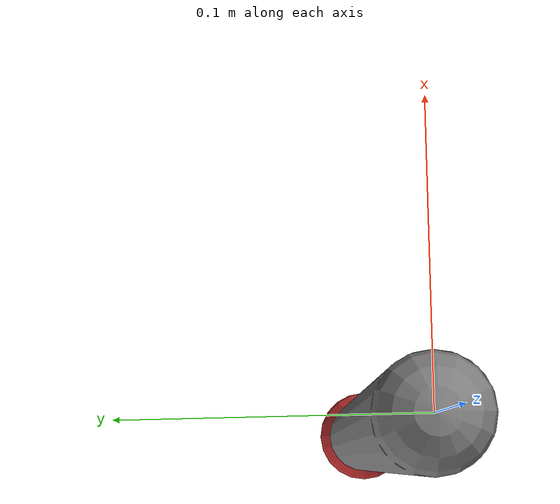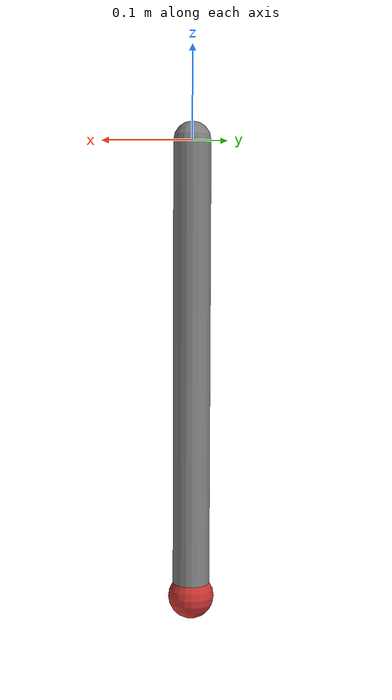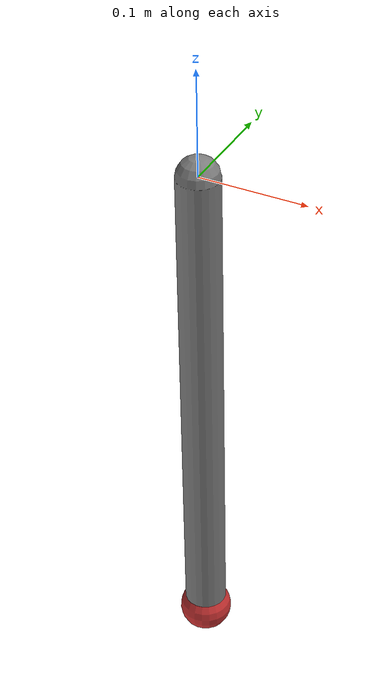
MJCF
<mujoco model="simple_pendulum">
  <compiler angle="radian" coordinate="local"/>
  <option timestep="0.005" gravity="0 0 -9.81" integrator="RK4"/>
  <default>
    <joint limited="true" damping="0" armature="0" range="-360 360"/>
    <geom type="capsule" size="0.02 0.25" density="1200"/>
    <site size="0.025" rgba="0.8 0.2 0.2 1"/>
  </default>
  <worldbody>
    <body name="arm" pos="0 0 0">
      <joint name="hinge" type="hinge" axis="0 1 0"/>
      <geom fromto="0 0 0 0 0 -0.5"/>
      <site name="tip" pos="0 0 -0.5"/>
    </body>
  </worldbody>
  <actuator>
    <motor name="torque" joint="hinge" gear="1" forcelimited="true" forcerange="-3 3"/>
  </actuator>
</mujoco>
